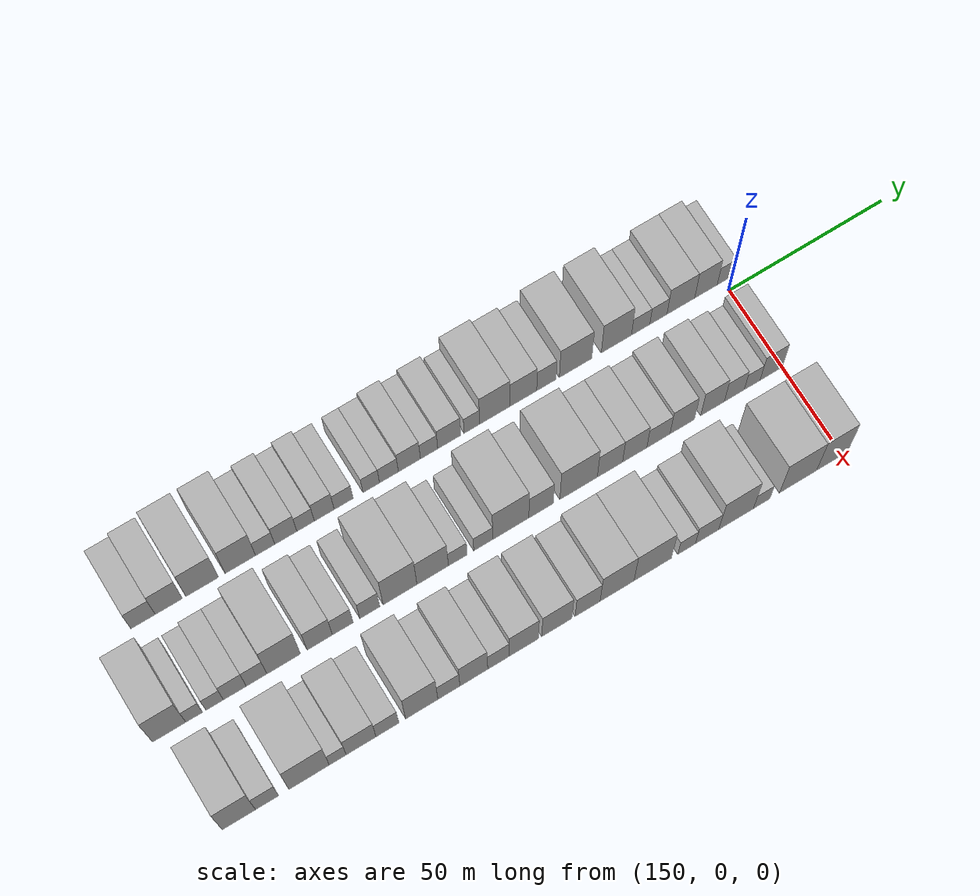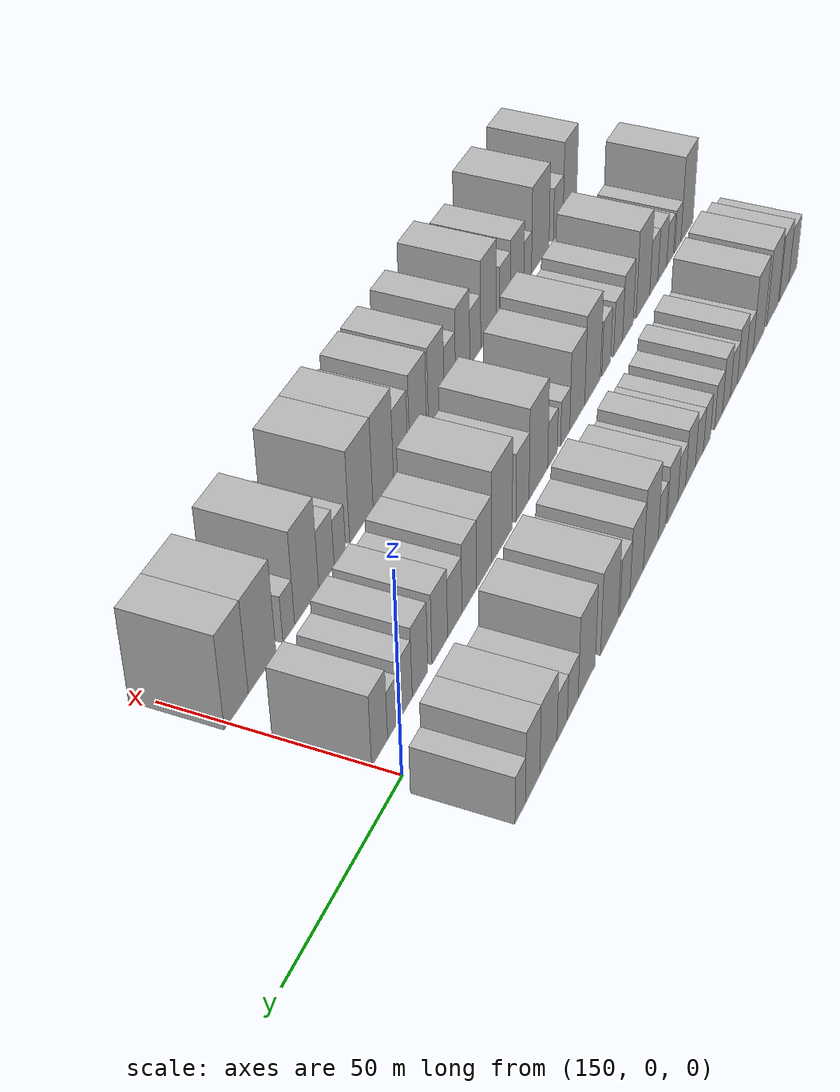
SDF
<sdf version="1.6">
 <world name="default">
  <model name="building_382">
   <static>1</static>
   <pose>137.0000 -180.4706 0 0.000000 0.000000 0.000000</pose>
   <link name="link">
    <pose>0 0 7.50 0 0 0</pose>
    <collision name="collision"><geometry><box><size>20.0000 7.2728 15.0000</size></box></geometry></collision>
    <visual name="visual">
     <cast_shadows>0</cast_shadows>
     <geometry><box><size>20.0000 7.2728 15.0000</size></box></geometry>
     <material>
      <script>
       <uri>model://HANNAS_wall/materials/scripts</uri>
       <uri>model://HANNAS_wall/materials/textures</uri>
       <name>vrc/HANNAS_wall</name>
      </script>
     </material>
    </visual>
   </link>
  </model>
  <model name="building_383">
   <static>1</static>
   <pose>137.0000 -172.7658 0 0.000000 0.000000 0.000000</pose>
   <link name="link">
    <pose>0 0 9.00 0 0 0</pose>
    <collision name="collision"><geometry><box><size>20.0000 8.1368 18.0000</size></box></geometry></collision>
    <visual name="visual">
     <cast_shadows>0</cast_shadows>
     <geometry><box><size>20.0000 8.1368 18.0000</size></box></geometry>
     <material>
      <script>
       <uri>model://HANNAS_wall/materials/scripts</uri>
       <uri>model://HANNAS_wall/materials/textures</uri>
       <name>vrc/HANNAS_wall</name>
      </script>
     </material>
    </visual>
   </link>
  </model>
  <model name="building_384">
   <static>1</static>
   <pose>137.0000 -162.7861 0 0.000000 0.000000 0.000000</pose>
   <link name="link">
    <pose>0 0 10.50 0 0 0</pose>
    <collision name="collision"><geometry><box><size>20.0000 9.8226 21.0000</size></box></geometry></collision>
    <visual name="visual">
     <cast_shadows>0</cast_shadows>
     <geometry><box><size>20.0000 9.8226 21.0000</size></box></geometry>
     <material>
      <script>
       <uri>model://HANNAS_wall/materials/scripts</uri>
       <uri>model://HANNAS_wall/materials/textures</uri>
       <name>vrc/HANNAS_wall</name>
      </script>
     </material>
    </visual>
   </link>
  </model>
  <model name="building_385">
   <static>1</static>
   <pose>137.0000 -151.2674 0 0.000000 0.000000 0.000000</pose>
   <link name="link">
    <pose>0 0 10.50 0 0 0</pose>
    <collision name="collision"><geometry><box><size>20.0000 9.2147 21.0000</size></box></geometry></collision>
    <visual name="visual">
     <cast_shadows>0</cast_shadows>
     <geometry><box><size>20.0000 9.2147 21.0000</size></box></geometry>
     <material>
      <script>
       <uri>model://HANNAS_wall/materials/scripts</uri>
       <uri>model://HANNAS_wall/materials/textures</uri>
       <name>vrc/HANNAS_wall</name>
      </script>
     </material>
    </visual>
   </link>
  </model>
  <model name="building_386">
   <static>1</static>
   <pose>137.0000 -143.7419 0 0.000000 0.000000 0.000000</pose>
   <link name="link">
    <pose>0 0 6.00 0 0 0</pose>
    <collision name="collision"><geometry><box><size>20.0000 5.8364 12.0000</size></box></geometry></collision>
    <visual name="visual">
     <cast_shadows>0</cast_shadows>
     <geometry><box><size>20.0000 5.8364 12.0000</size></box></geometry>
     <material>
      <script>
       <uri>model://HANNAS_wall/materials/scripts</uri>
       <uri>model://HANNAS_wall/materials/textures</uri>
       <name>vrc/HANNAS_wall</name>
      </script>
     </material>
    </visual>
   </link>
  </model>
  <model name="building_387">
   <static>1</static>
   <pose>137.0000 -137.4487 0 0.000000 0.000000 0.000000</pose>
   <link name="link">
    <pose>0 0 7.50 0 0 0</pose>
    <collision name="collision"><geometry><box><size>20.0000 6.7500 15.0000</size></box></geometry></collision>
    <visual name="visual">
     <cast_shadows>0</cast_shadows>
     <geometry><box><size>20.0000 6.7500 15.0000</size></box></geometry>
     <material>
      <script>
       <uri>model://HANNAS_wall/materials/scripts</uri>
       <uri>model://HANNAS_wall/materials/textures</uri>
       <name>vrc/HANNAS_wall</name>
      </script>
     </material>
    </visual>
   </link>
  </model>
  <model name="building_388">
   <static>1</static>
   <pose>137.0000 -131.4092 0 0.000000 0.000000 0.000000</pose>
   <link name="link">
    <pose>0 0 6.00 0 0 0</pose>
    <collision name="collision"><geometry><box><size>20.0000 5.3291 12.0000</size></box></geometry></collision>
    <visual name="visual">
     <cast_shadows>0</cast_shadows>
     <geometry><box><size>20.0000 5.3291 12.0000</size></box></geometry>
     <material>
      <script>
       <uri>model://HANNAS_wall/materials/scripts</uri>
       <uri>model://HANNAS_wall/materials/textures</uri>
       <name>vrc/HANNAS_wall</name>
      </script>
     </material>
    </visual>
   </link>
  </model>
  <model name="building_389">
   <static>1</static>
   <pose>137.0000 -125.7142 0 0.000000 0.000000 0.000000</pose>
   <link name="link">
    <pose>0 0 7.50 0 0 0</pose>
    <collision name="collision"><geometry><box><size>20.0000 6.0608 15.0000</size></box></geometry></collision>
    <visual name="visual">
     <cast_shadows>0</cast_shadows>
     <geometry><box><size>20.0000 6.0608 15.0000</size></box></geometry>
     <material>
      <script>
       <uri>model://HANNAS_wall/materials/scripts</uri>
       <uri>model://HANNAS_wall/materials/textures</uri>
       <name>vrc/HANNAS_wall</name>
      </script>
     </material>
    </visual>
   </link>
  </model>
  <model name="building_390">
   <static>1</static>
   <pose>137.0000 -119.7644 0 0.000000 0.000000 0.000000</pose>
   <link name="link">
    <pose>0 0 6.00 0 0 0</pose>
    <collision name="collision"><geometry><box><size>20.0000 5.8388 12.0000</size></box></geometry></collision>
    <visual name="visual">
     <cast_shadows>0</cast_shadows>
     <geometry><box><size>20.0000 5.8388 12.0000</size></box></geometry>
     <material>
      <script>
       <uri>model://HANNAS_wall/materials/scripts</uri>
       <uri>model://HANNAS_wall/materials/textures</uri>
       <name>vrc/HANNAS_wall</name>
      </script>
     </material>
    </visual>
   </link>
  </model>
  <model name="building_391">
   <static>1</static>
   <pose>137.0000 -111.2874 0 0.000000 0.000000 0.000000</pose>
   <link name="link">
    <pose>0 0 6.00 0 0 0</pose>
    <collision name="collision"><geometry><box><size>20.0000 5.1153 12.0000</size></box></geometry></collision>
    <visual name="visual">
     <cast_shadows>0</cast_shadows>
     <geometry><box><size>20.0000 5.1153 12.0000</size></box></geometry>
     <material>
      <script>
       <uri>model://HANNAS_wall/materials/scripts</uri>
       <uri>model://HANNAS_wall/materials/textures</uri>
       <name>vrc/HANNAS_wall</name>
      </script>
     </material>
    </visual>
   </link>
  </model>
  <model name="building_392">
   <static>1</static>
   <pose>137.0000 -105.8139 0 0.000000 0.000000 0.000000</pose>
   <link name="link">
    <pose>0 0 6.00 0 0 0</pose>
    <collision name="collision"><geometry><box><size>20.0000 5.8317 12.0000</size></box></geometry></collision>
    <visual name="visual">
     <cast_shadows>0</cast_shadows>
     <geometry><box><size>20.0000 5.8317 12.0000</size></box></geometry>
     <material>
      <script>
       <uri>model://HANNAS_wall/materials/scripts</uri>
       <uri>model://HANNAS_wall/materials/textures</uri>
       <name>vrc/HANNAS_wall</name>
      </script>
     </material>
    </visual>
   </link>
  </model>
  <model name="building_393">
   <static>1</static>
   <pose>137.0000 -99.4888 0 0.000000 0.000000 0.000000</pose>
   <link name="link">
    <pose>0 0 7.50 0 0 0</pose>
    <collision name="collision"><geometry><box><size>20.0000 6.8184 15.0000</size></box></geometry></collision>
    <visual name="visual">
     <cast_shadows>0</cast_shadows>
     <geometry><box><size>20.0000 6.8184 15.0000</size></box></geometry>
     <material>
      <script>
       <uri>model://HANNAS_wall/materials/scripts</uri>
       <uri>model://HANNAS_wall/materials/textures</uri>
       <name>vrc/HANNAS_wall</name>
      </script>
     </material>
    </visual>
   </link>
  </model>
  <model name="building_394">
   <static>1</static>
   <pose>137.0000 -93.3943 0 0.000000 0.000000 0.000000</pose>
   <link name="link">
    <pose>0 0 6.00 0 0 0</pose>
    <collision name="collision"><geometry><box><size>20.0000 5.3708 12.0000</size></box></geometry></collision>
    <visual name="visual">
     <cast_shadows>0</cast_shadows>
     <geometry><box><size>20.0000 5.3708 12.0000</size></box></geometry>
     <material>
      <script>
       <uri>model://HANNAS_wall/materials/scripts</uri>
       <uri>model://HANNAS_wall/materials/textures</uri>
       <name>vrc/HANNAS_wall</name>
      </script>
     </material>
    </visual>
   </link>
  </model>
  <model name="building_395">
   <static>1</static>
   <pose>137.0000 -87.1023 0 0.000000 0.000000 0.000000</pose>
   <link name="link">
    <pose>0 0 7.50 0 0 0</pose>
    <collision name="collision"><geometry><box><size>20.0000 7.2132 15.0000</size></box></geometry></collision>
    <visual name="visual">
     <cast_shadows>0</cast_shadows>
     <geometry><box><size>20.0000 7.2132 15.0000</size></box></geometry>
     <material>
      <script>
       <uri>model://HANNAS_wall/materials/scripts</uri>
       <uri>model://HANNAS_wall/materials/textures</uri>
       <name>vrc/HANNAS_wall</name>
      </script>
     </material>
    </visual>
   </link>
  </model>
  <model name="building_396">
   <static>1</static>
   <pose>137.0000 -80.0476 0 0.000000 0.000000 0.000000</pose>
   <link name="link">
    <pose>0 0 6.00 0 0 0</pose>
    <collision name="collision"><geometry><box><size>20.0000 4.8962 12.0000</size></box></geometry></collision>
    <visual name="visual">
     <cast_shadows>0</cast_shadows>
     <geometry><box><size>20.0000 4.8962 12.0000</size></box></geometry>
     <material>
      <script>
       <uri>model://HANNAS_wall/materials/scripts</uri>
       <uri>model://HANNAS_wall/materials/textures</uri>
       <name>vrc/HANNAS_wall</name>
      </script>
     </material>
    </visual>
   </link>
  </model>
  <model name="building_397">
   <static>1</static>
   <pose>137.0000 -72.8188 0 0.000000 0.000000 0.000000</pose>
   <link name="link">
    <pose>0 0 10.50 0 0 0</pose>
    <collision name="collision"><geometry><box><size>20.0000 9.5615 21.0000</size></box></geometry></collision>
    <visual name="visual">
     <cast_shadows>0</cast_shadows>
     <geometry><box><size>20.0000 9.5615 21.0000</size></box></geometry>
     <material>
      <script>
       <uri>model://HANNAS_wall/materials/scripts</uri>
       <uri>model://HANNAS_wall/materials/textures</uri>
       <name>vrc/HANNAS_wall</name>
      </script>
     </material>
    </visual>
   </link>
  </model>
  <model name="building_398">
   <static>1</static>
   <pose>137.0000 -63.8646 0 0.000000 0.000000 0.000000</pose>
   <link name="link">
    <pose>0 0 9.00 0 0 0</pose>
    <collision name="collision"><geometry><box><size>20.0000 8.3469 18.0000</size></box></geometry></collision>
    <visual name="visual">
     <cast_shadows>0</cast_shadows>
     <geometry><box><size>20.0000 8.3469 18.0000</size></box></geometry>
     <material>
      <script>
       <uri>model://HANNAS_wall/materials/scripts</uri>
       <uri>model://HANNAS_wall/materials/textures</uri>
       <name>vrc/HANNAS_wall</name>
      </script>
     </material>
    </visual>
   </link>
  </model>
  <model name="building_399">
   <static>1</static>
   <pose>137.0000 -56.6264 0 0.000000 0.000000 0.000000</pose>
   <link name="link">
    <pose>0 0 7.50 0 0 0</pose>
    <collision name="collision"><geometry><box><size>20.0000 6.1295 15.0000</size></box></geometry></collision>
    <visual name="visual">
     <cast_shadows>0</cast_shadows>
     <geometry><box><size>20.0000 6.1295 15.0000</size></box></geometry>
     <material>
      <script>
       <uri>model://HANNAS_wall/materials/scripts</uri>
       <uri>model://HANNAS_wall/materials/textures</uri>
       <name>vrc/HANNAS_wall</name>
      </script>
     </material>
    </visual>
   </link>
  </model>
  <model name="building_400">
   <static>1</static>
   <pose>137.0000 -47.3902 0 0.000000 0.000000 0.000000</pose>
   <link name="link">
    <pose>0 0 10.50 0 0 0</pose>
    <collision name="collision"><geometry><box><size>20.0000 10.3430 21.0000</size></box></geometry></collision>
    <visual name="visual">
     <cast_shadows>0</cast_shadows>
     <geometry><box><size>20.0000 10.3430 21.0000</size></box></geometry>
     <material>
      <script>
       <uri>model://HANNAS_wall/materials/scripts</uri>
       <uri>model://HANNAS_wall/materials/textures</uri>
       <name>vrc/HANNAS_wall</name>
      </script>
     </material>
    </visual>
   </link>
  </model>
  <model name="building_401">
   <static>1</static>
   <pose>137.0000 -34.4044 0 0.000000 0.000000 0.000000</pose>
   <link name="link">
    <pose>0 0 10.50 0 0 0</pose>
    <collision name="collision"><geometry><box><size>20.0000 9.6286 21.0000</size></box></geometry></collision>
    <visual name="visual">
     <cast_shadows>0</cast_shadows>
     <geometry><box><size>20.0000 9.6286 21.0000</size></box></geometry>
     <material>
      <script>
       <uri>model://HANNAS_wall/materials/scripts</uri>
       <uri>model://HANNAS_wall/materials/textures</uri>
       <name>vrc/HANNAS_wall</name>
      </script>
     </material>
    </visual>
   </link>
  </model>
  <model name="building_402">
   <static>1</static>
   <pose>137.0000 -26.6426 0 0.000000 0.000000 0.000000</pose>
   <link name="link">
    <pose>0 0 6.00 0 0 0</pose>
    <collision name="collision"><geometry><box><size>20.0000 5.8951 12.0000</size></box></geometry></collision>
    <visual name="visual">
     <cast_shadows>0</cast_shadows>
     <geometry><box><size>20.0000 5.8951 12.0000</size></box></geometry>
     <material>
      <script>
       <uri>model://HANNAS_wall/materials/scripts</uri>
       <uri>model://HANNAS_wall/materials/textures</uri>
       <name>vrc/HANNAS_wall</name>
      </script>
     </material>
    </visual>
   </link>
  </model>
  <model name="building_403">
   <static>1</static>
   <pose>137.0000 -20.9336 0 0.000000 0.000000 0.000000</pose>
   <link name="link">
    <pose>0 0 6.00 0 0 0</pose>
    <collision name="collision"><geometry><box><size>20.0000 5.5229 12.0000</size></box></geometry></collision>
    <visual name="visual">
     <cast_shadows>0</cast_shadows>
     <geometry><box><size>20.0000 5.5229 12.0000</size></box></geometry>
     <material>
      <script>
       <uri>model://HANNAS_wall/materials/scripts</uri>
       <uri>model://HANNAS_wall/materials/textures</uri>
       <name>vrc/HANNAS_wall</name>
      </script>
     </material>
    </visual>
   </link>
  </model>
  <model name="building_404">
   <static>1</static>
   <pose>137.0000 -13.7014 0 0.000000 0.000000 0.000000</pose>
   <link name="link">
    <pose>0 0 9.00 0 0 0</pose>
    <collision name="collision"><geometry><box><size>20.0000 8.9415 18.0000</size></box></geometry></collision>
    <visual name="visual">
     <cast_shadows>0</cast_shadows>
     <geometry><box><size>20.0000 8.9415 18.0000</size></box></geometry>
     <material>
      <script>
       <uri>model://HANNAS_wall/materials/scripts</uri>
       <uri>model://HANNAS_wall/materials/textures</uri>
       <name>vrc/HANNAS_wall</name>
      </script>
     </material>
    </visual>
   </link>
  </model>
  <model name="building_405">
   <static>1</static>
   <pose>137.0000 -5.5773 0 0.000000 0.000000 0.000000</pose>
   <link name="link">
    <pose>0 0 9.00 0 0 0</pose>
    <collision name="collision"><geometry><box><size>20.0000 7.3066 18.0000</size></box></geometry></collision>
    <visual name="visual">
     <cast_shadows>0</cast_shadows>
     <geometry><box><size>20.0000 7.3066 18.0000</size></box></geometry>
     <material>
      <script>
       <uri>model://HANNAS_wall/materials/scripts</uri>
       <uri>model://HANNAS_wall/materials/textures</uri>
       <name>vrc/HANNAS_wall</name>
      </script>
     </material>
    </visual>
   </link>
  </model>
  <model name="building_406">
   <static>1</static>
   <pose>137.0000 0.6735 0 0.000000 0.000000 0.000000</pose>
   <link name="link">
    <pose>0 0 6.00 0 0 0</pose>
    <collision name="collision"><geometry><box><size>20.0000 5.1950 12.0000</size></box></geometry></collision>
    <visual name="visual">
     <cast_shadows>0</cast_shadows>
     <geometry><box><size>20.0000 5.1950 12.0000</size></box></geometry>
     <material>
      <script>
       <uri>model://HANNAS_wall/materials/scripts</uri>
       <uri>model://HANNAS_wall/materials/textures</uri>
       <name>vrc/HANNAS_wall</name>
      </script>
     </material>
    </visual>
   </link>
  </model>
  <model name="building_505">
   <static>1</static>
   <pose>166.0000 -188.9679 0 0.000000 0.000000 0.000000</pose>
   <link name="link">
    <pose>0 0 12.00 0 0 0</pose>
    <collision name="collision"><geometry><box><size>20.0000 9.8415 24.0000</size></box></geometry></collision>
    <visual name="visual">
     <cast_shadows>0</cast_shadows>
     <geometry><box><size>20.0000 9.8415 24.0000</size></box></geometry>
     <material>
      <script>
       <uri>model://HANNAS_wall/materials/scripts</uri>
       <uri>model://HANNAS_wall/materials/textures</uri>
       <name>vrc/HANNAS_wall</name>
      </script>
     </material>
    </visual>
   </link>
  </model>
  <model name="building_506">
   <static>1</static>
   <pose>166.0000 -181.5853 0 0.000000 0.000000 0.000000</pose>
   <link name="link">
    <pose>0 0 6.00 0 0 0</pose>
    <collision name="collision"><geometry><box><size>20.0000 4.9237 12.0000</size></box></geometry></collision>
    <visual name="visual">
     <cast_shadows>0</cast_shadows>
     <geometry><box><size>20.0000 4.9237 12.0000</size></box></geometry>
     <material>
      <script>
       <uri>model://HANNAS_wall/materials/scripts</uri>
       <uri>model://HANNAS_wall/materials/textures</uri>
       <name>vrc/HANNAS_wall</name>
      </script>
     </material>
    </visual>
   </link>
  </model>
  <model name="building_507">
   <static>1</static>
   <pose>166.0000 -175.5259 0 0.000000 0.000000 0.000000</pose>
   <link name="link">
    <pose>0 0 6.00 0 0 0</pose>
    <collision name="collision"><geometry><box><size>20.0000 5.1951 12.0000</size></box></geometry></collision>
    <visual name="visual">
     <cast_shadows>0</cast_shadows>
     <geometry><box><size>20.0000 5.1951 12.0000</size></box></geometry>
     <material>
      <script>
       <uri>model://HANNAS_wall/materials/scripts</uri>
       <uri>model://HANNAS_wall/materials/textures</uri>
       <name>vrc/HANNAS_wall</name>
      </script>
     </material>
    </visual>
   </link>
  </model>
  <model name="building_508">
   <static>1</static>
   <pose>166.0000 -169.5292 0 0.000000 0.000000 0.000000</pose>
   <link name="link">
    <pose>0 0 7.50 0 0 0</pose>
    <collision name="collision"><geometry><box><size>20.0000 6.7982 15.0000</size></box></geometry></collision>
    <visual name="visual">
     <cast_shadows>0</cast_shadows>
     <geometry><box><size>20.0000 6.7982 15.0000</size></box></geometry>
     <material>
      <script>
       <uri>model://HANNAS_wall/materials/scripts</uri>
       <uri>model://HANNAS_wall/materials/textures</uri>
       <name>vrc/HANNAS_wall</name>
      </script>
     </material>
    </visual>
   </link>
  </model>
  <model name="building_509">
   <static>1</static>
   <pose>166.0000 -163.0669 0 0.000000 0.000000 0.000000</pose>
   <link name="link">
    <pose>0 0 7.50 0 0 0</pose>
    <collision name="collision"><geometry><box><size>20.0000 6.1266 15.0000</size></box></geometry></collision>
    <visual name="visual">
     <cast_shadows>0</cast_shadows>
     <geometry><box><size>20.0000 6.1266 15.0000</size></box></geometry>
     <material>
      <script>
       <uri>model://HANNAS_wall/materials/scripts</uri>
       <uri>model://HANNAS_wall/materials/textures</uri>
       <name>vrc/HANNAS_wall</name>
      </script>
     </material>
    </visual>
   </link>
  </model>
  <model name="building_510">
   <static>1</static>
   <pose>166.0000 -154.9413 0 0.000000 0.000000 0.000000</pose>
   <link name="link">
    <pose>0 0 12.00 0 0 0</pose>
    <collision name="collision"><geometry><box><size>20.0000 10.1246 24.0000</size></box></geometry></collision>
    <visual name="visual">
     <cast_shadows>0</cast_shadows>
     <geometry><box><size>20.0000 10.1246 24.0000</size></box></geometry>
     <material>
      <script>
       <uri>model://HANNAS_wall/materials/scripts</uri>
       <uri>model://HANNAS_wall/materials/textures</uri>
       <name>vrc/HANNAS_wall</name>
      </script>
     </material>
    </visual>
   </link>
  </model>
  <model name="building_511">
   <static>1</static>
   <pose>166.0000 -144.0713 0 0.000000 0.000000 0.000000</pose>
   <link name="link">
    <pose>0 0 9.00 0 0 0</pose>
    <collision name="collision"><geometry><box><size>20.0000 7.6154 18.0000</size></box></geometry></collision>
    <visual name="visual">
     <cast_shadows>0</cast_shadows>
     <geometry><box><size>20.0000 7.6154 18.0000</size></box></geometry>
     <material>
      <script>
       <uri>model://HANNAS_wall/materials/scripts</uri>
       <uri>model://HANNAS_wall/materials/textures</uri>
       <name>vrc/HANNAS_wall</name>
      </script>
     </material>
    </visual>
   </link>
  </model>
  <model name="building_512">
   <static>1</static>
   <pose>166.0000 -137.1298 0 0.000000 0.000000 0.000000</pose>
   <link name="link">
    <pose>0 0 7.50 0 0 0</pose>
    <collision name="collision"><geometry><box><size>20.0000 6.2675 15.0000</size></box></geometry></collision>
    <visual name="visual">
     <cast_shadows>0</cast_shadows>
     <geometry><box><size>20.0000 6.2675 15.0000</size></box></geometry>
     <material>
      <script>
       <uri>model://HANNAS_wall/materials/scripts</uri>
       <uri>model://HANNAS_wall/materials/textures</uri>
       <name>vrc/HANNAS_wall</name>
      </script>
     </material>
    </visual>
   </link>
  </model>
  <model name="building_513">
   <static>1</static>
   <pose>166.0000 -128.9536 0 0.000000 0.000000 0.000000</pose>
   <link name="link">
    <pose>0 0 7.50 0 0 0</pose>
    <collision name="collision"><geometry><box><size>20.0000 6.0850 15.0000</size></box></geometry></collision>
    <visual name="visual">
     <cast_shadows>0</cast_shadows>
     <geometry><box><size>20.0000 6.0850 15.0000</size></box></geometry>
     <material>
      <script>
       <uri>model://HANNAS_wall/materials/scripts</uri>
       <uri>model://HANNAS_wall/materials/textures</uri>
       <name>vrc/HANNAS_wall</name>
      </script>
     </material>
    </visual>
   </link>
  </model>
  <model name="building_514">
   <static>1</static>
   <pose>166.0000 -119.7520 0 0.000000 0.000000 0.000000</pose>
   <link name="link">
    <pose>0 0 12.00 0 0 0</pose>
    <collision name="collision"><geometry><box><size>20.0000 10.3180 24.0000</size></box></geometry></collision>
    <visual name="visual">
     <cast_shadows>0</cast_shadows>
     <geometry><box><size>20.0000 10.3180 24.0000</size></box></geometry>
     <material>
      <script>
       <uri>model://HANNAS_wall/materials/scripts</uri>
       <uri>model://HANNAS_wall/materials/textures</uri>
       <name>vrc/HANNAS_wall</name>
      </script>
     </material>
    </visual>
   </link>
  </model>
  <model name="building_515">
   <static>1</static>
   <pose>166.0000 -109.7786 0 0.000000 0.000000 0.000000</pose>
   <link name="link">
    <pose>0 0 10.50 0 0 0</pose>
    <collision name="collision"><geometry><box><size>20.0000 9.6288 21.0000</size></box></geometry></collision>
    <visual name="visual">
     <cast_shadows>0</cast_shadows>
     <geometry><box><size>20.0000 9.6288 21.0000</size></box></geometry>
     <material>
      <script>
       <uri>model://HANNAS_wall/materials/scripts</uri>
       <uri>model://HANNAS_wall/materials/textures</uri>
       <name>vrc/HANNAS_wall</name>
      </script>
     </material>
    </visual>
   </link>
  </model>
  <model name="building_516">
   <static>1</static>
   <pose>166.0000 -102.0785 0 0.000000 0.000000 0.000000</pose>
   <link name="link">
    <pose>0 0 6.00 0 0 0</pose>
    <collision name="collision"><geometry><box><size>20.0000 5.7716 12.0000</size></box></geometry></collision>
    <visual name="visual">
     <cast_shadows>0</cast_shadows>
     <geometry><box><size>20.0000 5.7716 12.0000</size></box></geometry>
     <material>
      <script>
       <uri>model://HANNAS_wall/materials/scripts</uri>
       <uri>model://HANNAS_wall/materials/textures</uri>
       <name>vrc/HANNAS_wall</name>
      </script>
     </material>
    </visual>
   </link>
  </model>
  <model name="building_517">
   <static>1</static>
   <pose>166.0000 -94.2477 0 0.000000 0.000000 0.000000</pose>
   <link name="link">
    <pose>0 0 6.00 0 0 0</pose>
    <collision name="collision"><geometry><box><size>20.0000 5.8900 12.0000</size></box></geometry></collision>
    <visual name="visual">
     <cast_shadows>0</cast_shadows>
     <geometry><box><size>20.0000 5.8900 12.0000</size></box></geometry>
     <material>
      <script>
       <uri>model://HANNAS_wall/materials/scripts</uri>
       <uri>model://HANNAS_wall/materials/textures</uri>
       <name>vrc/HANNAS_wall</name>
      </script>
     </material>
    </visual>
   </link>
  </model>
  <model name="building_518">
   <static>1</static>
   <pose>166.0000 -85.7272 0 0.000000 0.000000 0.000000</pose>
   <link name="link">
    <pose>0 0 12.00 0 0 0</pose>
    <collision name="collision"><geometry><box><size>20.0000 11.1509 24.0000</size></box></geometry></collision>
    <visual name="visual">
     <cast_shadows>0</cast_shadows>
     <geometry><box><size>20.0000 11.1509 24.0000</size></box></geometry>
     <material>
      <script>
       <uri>model://HANNAS_wall/materials/scripts</uri>
       <uri>model://HANNAS_wall/materials/textures</uri>
       <name>vrc/HANNAS_wall</name>
      </script>
     </material>
    </visual>
   </link>
  </model>
  <model name="building_519">
   <static>1</static>
   <pose>166.0000 -76.3242 0 0.000000 0.000000 0.000000</pose>
   <link name="link">
    <pose>0 0 9.00 0 0 0</pose>
    <collision name="collision"><geometry><box><size>20.0000 7.6551 18.0000</size></box></geometry></collision>
    <visual name="visual">
     <cast_shadows>0</cast_shadows>
     <geometry><box><size>20.0000 7.6551 18.0000</size></box></geometry>
     <material>
      <script>
       <uri>model://HANNAS_wall/materials/scripts</uri>
       <uri>model://HANNAS_wall/materials/textures</uri>
       <name>vrc/HANNAS_wall</name>
      </script>
     </material>
    </visual>
   </link>
  </model>
  <model name="building_520">
   <static>1</static>
   <pose>166.0000 -64.6501 0 0.000000 0.000000 0.000000</pose>
   <link name="link">
    <pose>0 0 12.00 0 0 0</pose>
    <collision name="collision"><geometry><box><size>20.0000 11.6931 24.0000</size></box></geometry></collision>
    <visual name="visual">
     <cast_shadows>0</cast_shadows>
     <geometry><box><size>20.0000 11.6931 24.0000</size></box></geometry>
     <material>
      <script>
       <uri>model://HANNAS_wall/materials/scripts</uri>
       <uri>model://HANNAS_wall/materials/textures</uri>
       <name>vrc/HANNAS_wall</name>
      </script>
     </material>
    </visual>
   </link>
  </model>
  <model name="building_521">
   <static>1</static>
   <pose>166.0000 -54.8337 0 0.000000 0.000000 0.000000</pose>
   <link name="link">
    <pose>0 0 9.00 0 0 0</pose>
    <collision name="collision"><geometry><box><size>20.0000 7.9397 18.0000</size></box></geometry></collision>
    <visual name="visual">
     <cast_shadows>0</cast_shadows>
     <geometry><box><size>20.0000 7.9397 18.0000</size></box></geometry>
     <material>
      <script>
       <uri>model://HANNAS_wall/materials/scripts</uri>
       <uri>model://HANNAS_wall/materials/textures</uri>
       <name>vrc/HANNAS_wall</name>
      </script>
     </material>
    </visual>
   </link>
  </model>
  <model name="building_522">
   <static>1</static>
   <pose>166.0000 -47.0372 0 0.000000 0.000000 0.000000</pose>
   <link name="link">
    <pose>0 0 9.00 0 0 0</pose>
    <collision name="collision"><geometry><box><size>20.0000 7.6534 18.0000</size></box></geometry></collision>
    <visual name="visual">
     <cast_shadows>0</cast_shadows>
     <geometry><box><size>20.0000 7.6534 18.0000</size></box></geometry>
     <material>
      <script>
       <uri>model://HANNAS_wall/materials/scripts</uri>
       <uri>model://HANNAS_wall/materials/textures</uri>
       <name>vrc/HANNAS_wall</name>
      </script>
     </material>
    </visual>
   </link>
  </model>
  <model name="building_523">
   <static>1</static>
   <pose>166.0000 -39.5444 0 0.000000 0.000000 0.000000</pose>
   <link name="link">
    <pose>0 0 7.50 0 0 0</pose>
    <collision name="collision"><geometry><box><size>20.0000 7.3321 15.0000</size></box></geometry></collision>
    <visual name="visual">
     <cast_shadows>0</cast_shadows>
     <geometry><box><size>20.0000 7.3321 15.0000</size></box></geometry>
     <material>
      <script>
       <uri>model://HANNAS_wall/materials/scripts</uri>
       <uri>model://HANNAS_wall/materials/textures</uri>
       <name>vrc/HANNAS_wall</name>
      </script>
     </material>
    </visual>
   </link>
  </model>
  <model name="building_524">
   <static>1</static>
   <pose>166.0000 -31.9901 0 0.000000 0.000000 0.000000</pose>
   <link name="link">
    <pose>0 0 9.00 0 0 0</pose>
    <collision name="collision"><geometry><box><size>20.0000 7.7765 18.0000</size></box></geometry></collision>
    <visual name="visual">
     <cast_shadows>0</cast_shadows>
     <geometry><box><size>20.0000 7.7765 18.0000</size></box></geometry>
     <material>
      <script>
       <uri>model://HANNAS_wall/materials/scripts</uri>
       <uri>model://HANNAS_wall/materials/textures</uri>
       <name>vrc/HANNAS_wall</name>
      </script>
     </material>
    </visual>
   </link>
  </model>
  <model name="building_525">
   <static>1</static>
   <pose>166.0000 -22.3334 0 0.000000 0.000000 0.000000</pose>
   <link name="link">
    <pose>0 0 9.00 0 0 0</pose>
    <collision name="collision"><geometry><box><size>20.0000 7.5368 18.0000</size></box></geometry></collision>
    <visual name="visual">
     <cast_shadows>0</cast_shadows>
     <geometry><box><size>20.0000 7.5368 18.0000</size></box></geometry>
     <material>
      <script>
       <uri>model://HANNAS_wall/materials/scripts</uri>
       <uri>model://HANNAS_wall/materials/textures</uri>
       <name>vrc/HANNAS_wall</name>
      </script>
     </material>
    </visual>
   </link>
  </model>
  <model name="building_526">
   <static>1</static>
   <pose>166.0000 -15.3813 0 0.000000 0.000000 0.000000</pose>
   <link name="link">
    <pose>0 0 7.50 0 0 0</pose>
    <collision name="collision"><geometry><box><size>20.0000 6.3674 15.0000</size></box></geometry></collision>
    <visual name="visual">
     <cast_shadows>0</cast_shadows>
     <geometry><box><size>20.0000 6.3674 15.0000</size></box></geometry>
     <material>
      <script>
       <uri>model://HANNAS_wall/materials/scripts</uri>
       <uri>model://HANNAS_wall/materials/textures</uri>
       <name>vrc/HANNAS_wall</name>
      </script>
     </material>
    </visual>
   </link>
  </model>
  <model name="building_527">
   <static>1</static>
   <pose>166.0000 -9.6643 0 0.000000 0.000000 0.000000</pose>
   <link name="link">
    <pose>0 0 6.00 0 0 0</pose>
    <collision name="collision"><geometry><box><size>20.0000 5.0666 12.0000</size></box></geometry></collision>
    <visual name="visual">
     <cast_shadows>0</cast_shadows>
     <geometry><box><size>20.0000 5.0666 12.0000</size></box></geometry>
     <material>
      <script>
       <uri>model://HANNAS_wall/materials/scripts</uri>
       <uri>model://HANNAS_wall/materials/textures</uri>
       <name>vrc/HANNAS_wall</name>
      </script>
     </material>
    </visual>
   </link>
  </model>
  <model name="building_528">
   <static>1</static>
   <pose>166.0000 -3.5299 0 0.000000 0.000000 0.000000</pose>
   <link name="link">
    <pose>0 0 9.00 0 0 0</pose>
    <collision name="collision"><geometry><box><size>20.0000 7.2020 18.0000</size></box></geometry></collision>
    <visual name="visual">
     <cast_shadows>0</cast_shadows>
     <geometry><box><size>20.0000 7.2020 18.0000</size></box></geometry>
     <material>
      <script>
       <uri>model://HANNAS_wall/materials/scripts</uri>
       <uri>model://HANNAS_wall/materials/textures</uri>
       <name>vrc/HANNAS_wall</name>
      </script>
     </material>
    </visual>
   </link>
  </model>
  <model name="building_620">
   <static>1</static>
   <pose>195.0000 -184.9259 0 0.000000 0.000000 0.000000</pose>
   <link name="link">
    <pose>0 0 12.00 0 0 0</pose>
    <collision name="collision"><geometry><box><size>20.0000 9.7514 24.0000</size></box></geometry></collision>
    <visual name="visual">
     <cast_shadows>0</cast_shadows>
     <geometry><box><size>20.0000 9.7514 24.0000</size></box></geometry>
     <material>
      <script>
       <uri>model://HANNAS_wall/materials/scripts</uri>
       <uri>model://HANNAS_wall/materials/textures</uri>
       <name>vrc/HANNAS_wall</name>
      </script>
     </material>
    </visual>
   </link>
  </model>
  <model name="building_621">
   <static>1</static>
   <pose>195.0000 -176.6489 0 0.000000 0.000000 0.000000</pose>
   <link name="link">
    <pose>0 0 7.50 0 0 0</pose>
    <collision name="collision"><geometry><box><size>20.0000 6.8025 15.0000</size></box></geometry></collision>
    <visual name="visual">
     <cast_shadows>0</cast_shadows>
     <geometry><box><size>20.0000 6.8025 15.0000</size></box></geometry>
     <material>
      <script>
       <uri>model://HANNAS_wall/materials/scripts</uri>
       <uri>model://HANNAS_wall/materials/textures</uri>
       <name>vrc/HANNAS_wall</name>
      </script>
     </material>
    </visual>
   </link>
  </model>
  <model name="building_622">
   <static>1</static>
   <pose>195.0000 -164.2511 0 0.000000 0.000000 0.000000</pose>
   <link name="link">
    <pose>0 0 12.00 0 0 0</pose>
    <collision name="collision"><geometry><box><size>20.0000 11.9931 24.0000</size></box></geometry></collision>
    <visual name="visual">
     <cast_shadows>0</cast_shadows>
     <geometry><box><size>20.0000 11.9931 24.0000</size></box></geometry>
     <material>
      <script>
       <uri>model://HANNAS_wall/materials/scripts</uri>
       <uri>model://HANNAS_wall/materials/textures</uri>
       <name>vrc/HANNAS_wall</name>
      </script>
     </material>
    </visual>
   </link>
  </model>
  <model name="building_623">
   <static>1</static>
   <pose>195.0000 -155.7522 0 0.000000 0.000000 0.000000</pose>
   <link name="link">
    <pose>0 0 6.00 0 0 0</pose>
    <collision name="collision"><geometry><box><size>20.0000 5.0048 12.0000</size></box></geometry></collision>
    <visual name="visual">
     <cast_shadows>0</cast_shadows>
     <geometry><box><size>20.0000 5.0048 12.0000</size></box></geometry>
     <material>
      <script>
       <uri>model://HANNAS_wall/materials/scripts</uri>
       <uri>model://HANNAS_wall/materials/textures</uri>
       <name>vrc/HANNAS_wall</name>
      </script>
     </material>
    </visual>
   </link>
  </model>
  <model name="building_624">
   <static>1</static>
   <pose>195.0000 -148.7823 0 0.000000 0.000000 0.000000</pose>
   <link name="link">
    <pose>0 0 9.00 0 0 0</pose>
    <collision name="collision"><geometry><box><size>20.0000 8.9349 18.0000</size></box></geometry></collision>
    <visual name="visual">
     <cast_shadows>0</cast_shadows>
     <geometry><box><size>20.0000 8.9349 18.0000</size></box></geometry>
     <material>
      <script>
       <uri>model://HANNAS_wall/materials/scripts</uri>
       <uri>model://HANNAS_wall/materials/textures</uri>
       <name>vrc/HANNAS_wall</name>
      </script>
     </material>
    </visual>
   </link>
  </model>
  <model name="building_625">
   <static>1</static>
   <pose>195.0000 -140.8824 0 0.000000 0.000000 0.000000</pose>
   <link name="link">
    <pose>0 0 7.50 0 0 0</pose>
    <collision name="collision"><geometry><box><size>20.0000 6.8648 15.0000</size></box></geometry></collision>
    <visual name="visual">
     <cast_shadows>0</cast_shadows>
     <geometry><box><size>20.0000 6.8648 15.0000</size></box></geometry>
     <material>
      <script>
       <uri>model://HANNAS_wall/materials/scripts</uri>
       <uri>model://HANNAS_wall/materials/textures</uri>
       <name>vrc/HANNAS_wall</name>
      </script>
     </material>
    </visual>
   </link>
  </model>
  <model name="building_626">
   <static>1</static>
   <pose>195.0000 -130.5905 0 0.000000 0.000000 0.000000</pose>
   <link name="link">
    <pose>0 0 12.00 0 0 0</pose>
    <collision name="collision"><geometry><box><size>20.0000 9.7190 24.0000</size></box></geometry></collision>
    <visual name="visual">
     <cast_shadows>0</cast_shadows>
     <geometry><box><size>20.0000 9.7190 24.0000</size></box></geometry>
     <material>
      <script>
       <uri>model://HANNAS_wall/materials/scripts</uri>
       <uri>model://HANNAS_wall/materials/textures</uri>
       <name>vrc/HANNAS_wall</name>
      </script>
     </material>
    </visual>
   </link>
  </model>
  <model name="building_627">
   <static>1</static>
   <pose>195.0000 -122.4020 0 0.000000 0.000000 0.000000</pose>
   <link name="link">
    <pose>0 0 7.50 0 0 0</pose>
    <collision name="collision"><geometry><box><size>20.0000 6.6579 15.0000</size></box></geometry></collision>
    <visual name="visual">
     <cast_shadows>0</cast_shadows>
     <geometry><box><size>20.0000 6.6579 15.0000</size></box></geometry>
     <material>
      <script>
       <uri>model://HANNAS_wall/materials/scripts</uri>
       <uri>model://HANNAS_wall/materials/textures</uri>
       <name>vrc/HANNAS_wall</name>
      </script>
     </material>
    </visual>
   </link>
  </model>
  <model name="building_628">
   <static>1</static>
   <pose>195.0000 -114.8606 0 0.000000 0.000000 0.000000</pose>
   <link name="link">
    <pose>0 0 10.50 0 0 0</pose>
    <collision name="collision"><geometry><box><size>20.0000 8.4250 21.0000</size></box></geometry></collision>
    <visual name="visual">
     <cast_shadows>0</cast_shadows>
     <geometry><box><size>20.0000 8.4250 21.0000</size></box></geometry>
     <material>
      <script>
       <uri>model://HANNAS_wall/materials/scripts</uri>
       <uri>model://HANNAS_wall/materials/textures</uri>
       <name>vrc/HANNAS_wall</name>
      </script>
     </material>
    </visual>
   </link>
  </model>
  <model name="building_629">
   <static>1</static>
   <pose>195.0000 -107.3681 0 0.000000 0.000000 0.000000</pose>
   <link name="link">
    <pose>0 0 7.50 0 0 0</pose>
    <collision name="collision"><geometry><box><size>20.0000 6.5601 15.0000</size></box></geometry></collision>
    <visual name="visual">
     <cast_shadows>0</cast_shadows>
     <geometry><box><size>20.0000 6.5601 15.0000</size></box></geometry>
     <material>
      <script>
       <uri>model://HANNAS_wall/materials/scripts</uri>
       <uri>model://HANNAS_wall/materials/textures</uri>
       <name>vrc/HANNAS_wall</name>
      </script>
     </material>
    </visual>
   </link>
  </model>
  <model name="building_630">
   <static>1</static>
   <pose>195.0000 -99.6374 0 0.000000 0.000000 0.000000</pose>
   <link name="link">
    <pose>0 0 10.50 0 0 0</pose>
    <collision name="collision"><geometry><box><size>20.0000 8.9012 21.0000</size></box></geometry></collision>
    <visual name="visual">
     <cast_shadows>0</cast_shadows>
     <geometry><box><size>20.0000 8.9012 21.0000</size></box></geometry>
     <material>
      <script>
       <uri>model://HANNAS_wall/materials/scripts</uri>
       <uri>model://HANNAS_wall/materials/textures</uri>
       <name>vrc/HANNAS_wall</name>
      </script>
     </material>
    </visual>
   </link>
  </model>
  <model name="building_631">
   <static>1</static>
   <pose>195.0000 -89.5528 0 0.000000 0.000000 0.000000</pose>
   <link name="link">
    <pose>0 0 10.50 0 0 0</pose>
    <collision name="collision"><geometry><box><size>20.0000 9.2681 21.0000</size></box></geometry></collision>
    <visual name="visual">
     <cast_shadows>0</cast_shadows>
     <geometry><box><size>20.0000 9.2681 21.0000</size></box></geometry>
     <material>
      <script>
       <uri>model://HANNAS_wall/materials/scripts</uri>
       <uri>model://HANNAS_wall/materials/textures</uri>
       <name>vrc/HANNAS_wall</name>
      </script>
     </material>
    </visual>
   </link>
  </model>
  <model name="building_632">
   <static>1</static>
   <pose>195.0000 -80.0875 0 0.000000 0.000000 0.000000</pose>
   <link name="link">
    <pose>0 0 9.00 0 0 0</pose>
    <collision name="collision"><geometry><box><size>20.0000 7.6625 18.0000</size></box></geometry></collision>
    <visual name="visual">
     <cast_shadows>0</cast_shadows>
     <geometry><box><size>20.0000 7.6625 18.0000</size></box></geometry>
     <material>
      <script>
       <uri>model://HANNAS_wall/materials/scripts</uri>
       <uri>model://HANNAS_wall/materials/textures</uri>
       <name>vrc/HANNAS_wall</name>
      </script>
     </material>
    </visual>
   </link>
  </model>
  <model name="building_633">
   <static>1</static>
   <pose>195.0000 -70.9916 0 0.000000 0.000000 0.000000</pose>
   <link name="link">
    <pose>0 0 12.00 0 0 0</pose>
    <collision name="collision"><geometry><box><size>20.0000 10.5291 24.0000</size></box></geometry></collision>
    <visual name="visual">
     <cast_shadows>0</cast_shadows>
     <geometry><box><size>20.0000 10.5291 24.0000</size></box></geometry>
     <material>
      <script>
       <uri>model://HANNAS_wall/materials/scripts</uri>
       <uri>model://HANNAS_wall/materials/textures</uri>
       <name>vrc/HANNAS_wall</name>
      </script>
     </material>
    </visual>
   </link>
  </model>
  <model name="building_634">
   <static>1</static>
   <pose>195.0000 -59.9052 0 0.000000 0.000000 0.000000</pose>
   <link name="link">
    <pose>0 0 12.00 0 0 0</pose>
    <collision name="collision"><geometry><box><size>20.0000 11.6437 24.0000</size></box></geometry></collision>
    <visual name="visual">
     <cast_shadows>0</cast_shadows>
     <geometry><box><size>20.0000 11.6437 24.0000</size></box></geometry>
     <material>
      <script>
       <uri>model://HANNAS_wall/materials/scripts</uri>
       <uri>model://HANNAS_wall/materials/textures</uri>
       <name>vrc/HANNAS_wall</name>
      </script>
     </material>
    </visual>
   </link>
  </model>
  <model name="building_635">
   <static>1</static>
   <pose>195.0000 -49.3303 0 0.000000 0.000000 0.000000</pose>
   <link name="link">
    <pose>0 0 6.00 0 0 0</pose>
    <collision name="collision"><geometry><box><size>20.0000 5.5062 12.0000</size></box></geometry></collision>
    <visual name="visual">
     <cast_shadows>0</cast_shadows>
     <geometry><box><size>20.0000 5.5062 12.0000</size></box></geometry>
     <material>
      <script>
       <uri>model://HANNAS_wall/materials/scripts</uri>
       <uri>model://HANNAS_wall/materials/textures</uri>
       <name>vrc/HANNAS_wall</name>
      </script>
     </material>
    </visual>
   </link>
  </model>
  <model name="building_636">
   <static>1</static>
   <pose>195.0000 -42.9401 0 0.000000 0.000000 0.000000</pose>
   <link name="link">
    <pose>0 0 7.50 0 0 0</pose>
    <collision name="collision"><geometry><box><size>20.0000 7.2743 15.0000</size></box></geometry></collision>
    <visual name="visual">
     <cast_shadows>0</cast_shadows>
     <geometry><box><size>20.0000 7.2743 15.0000</size></box></geometry>
     <material>
      <script>
       <uri>model://HANNAS_wall/materials/scripts</uri>
       <uri>model://HANNAS_wall/materials/textures</uri>
       <name>vrc/HANNAS_wall</name>
      </script>
     </material>
    </visual>
   </link>
  </model>
  <model name="building_637">
   <static>1</static>
   <pose>195.0000 -33.8116 0 0.000000 0.000000 0.000000</pose>
   <link name="link">
    <pose>0 0 12.00 0 0 0</pose>
    <collision name="collision"><geometry><box><size>20.0000 10.9826 24.0000</size></box></geometry></collision>
    <visual name="visual">
     <cast_shadows>0</cast_shadows>
     <geometry><box><size>20.0000 10.9826 24.0000</size></box></geometry>
     <material>
      <script>
       <uri>model://HANNAS_wall/materials/scripts</uri>
       <uri>model://HANNAS_wall/materials/textures</uri>
       <name>vrc/HANNAS_wall</name>
      </script>
     </material>
    </visual>
   </link>
  </model>
  <model name="building_638">
   <static>1</static>
   <pose>195.0000 -25.6893 0 0.000000 0.000000 0.000000</pose>
   <link name="link">
    <pose>0 0 6.00 0 0 0</pose>
    <collision name="collision"><geometry><box><size>20.0000 5.2621 12.0000</size></box></geometry></collision>
    <visual name="visual">
     <cast_shadows>0</cast_shadows>
     <geometry><box><size>20.0000 5.2621 12.0000</size></box></geometry>
     <material>
      <script>
       <uri>model://HANNAS_wall/materials/scripts</uri>
       <uri>model://HANNAS_wall/materials/textures</uri>
       <name>vrc/HANNAS_wall</name>
      </script>
     </material>
    </visual>
   </link>
  </model>
  <model name="building_639">
   <static>1</static>
   <pose>195.0000 -14.1423 0 0.000000 0.000000 0.000000</pose>
   <link name="link">
    <pose>0 0 12.00 0 0 0</pose>
    <collision name="collision"><geometry><box><size>20.0000 11.8318 24.0000</size></box></geometry></collision>
    <visual name="visual">
     <cast_shadows>0</cast_shadows>
     <geometry><box><size>20.0000 11.8318 24.0000</size></box></geometry>
     <material>
      <script>
       <uri>model://HANNAS_wall/materials/scripts</uri>
       <uri>model://HANNAS_wall/materials/textures</uri>
       <name>vrc/HANNAS_wall</name>
      </script>
     </material>
    </visual>
   </link>
  </model>
  <model name="building_640">
   <static>1</static>
   <pose>195.0000 -3.2785 0 0.000000 0.000000 0.000000</pose>
   <link name="link">
    <pose>0 0 12.00 0 0 0</pose>
    <collision name="collision"><geometry><box><size>20.0000 9.8959 24.0000</size></box></geometry></collision>
    <visual name="visual">
     <cast_shadows>0</cast_shadows>
     <geometry><box><size>20.0000 9.8959 24.0000</size></box></geometry>
     <material>
      <script>
       <uri>model://HANNAS_wall/materials/scripts</uri>
       <uri>model://HANNAS_wall/materials/textures</uri>
       <name>vrc/HANNAS_wall</name>
      </script>
     </material>
    </visual>
   </link>
  </model>
 </world>
</sdf>
